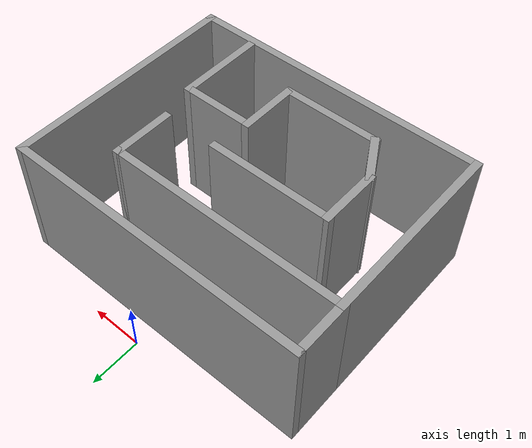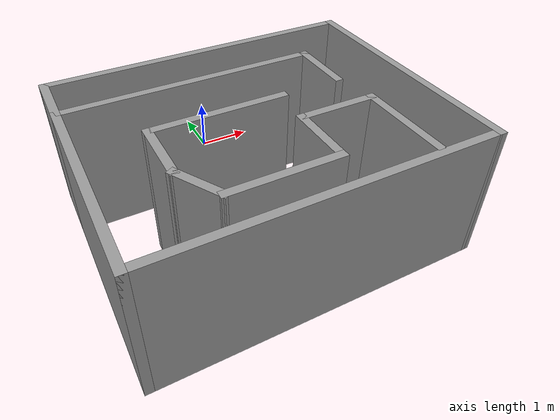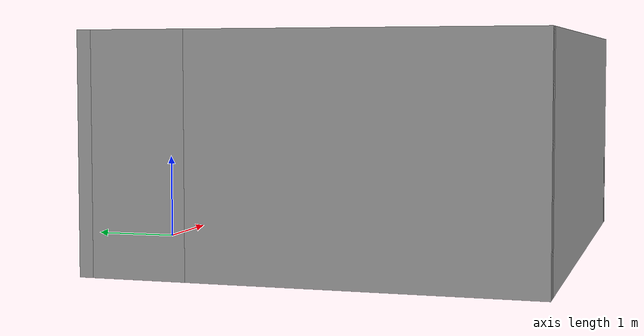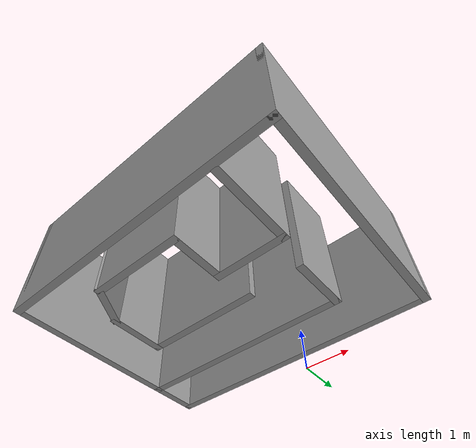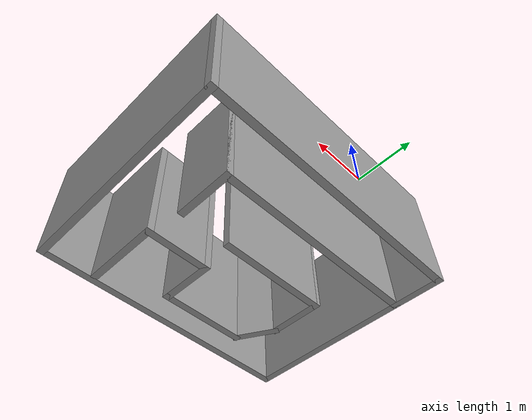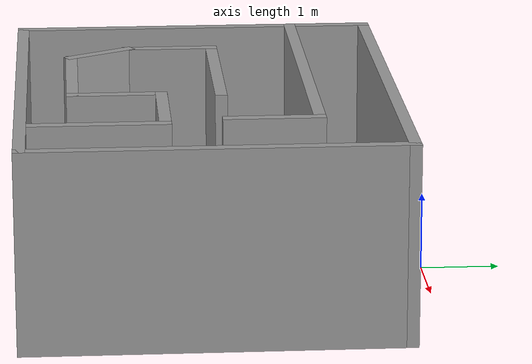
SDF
<?xml version='1.0'?>
<sdf version='1.6'>
  <model name='test'>
    <pose frame=''>-0.085 -2.76 0 0 -0 0</pose>
    <link name='Wall_0'>
      <collision name='Wall_0_Collision'>
        <geometry>
          <box>
            <size>3.75 0.15 2.5</size>
          </box>
        </geometry>
        <pose frame=''>0 0 1.25 0 -0 0</pose>
      </collision>
      <visual name='Wall_0_Visual'>
        <pose frame=''>0 0 1.25 0 -0 0</pose>
        <geometry>
          <box>
            <size>3.75 0.15 2.5</size>
          </box>
        </geometry>
        <material>
          <script>
            <uri>file://media/materials/scripts/gazebo.material</uri>
            <name>Gazebo/Grey</name>
          </script>
          <ambient>1 1 1 1</ambient>
        </material>
      </visual>
      <pose frame=''>-2.925 -0.5 0 0 0 -1.5708</pose>
    </link>
    <link name='Wall_1'>
      <collision name='Wall_1_Collision'>
        <geometry>
          <box>
            <size>6 0.15 2.5</size>
          </box>
        </geometry>
        <pose frame=''>0 0 1.25 0 -0 0</pose>
      </collision>
      <visual name='Wall_1_Visual'>
        <pose frame=''>0 0 1.25 0 -0 0</pose>
        <geometry>
          <box>
            <size>6 0.15 2.5</size>
          </box>
        </geometry>
        <material>
          <script>
            <uri>file://media/materials/scripts/gazebo.material</uri>
            <name>Gazebo/Grey</name>
          </script>
          <ambient>1 1 1 1</ambient>
        </material>
      </visual>
      <pose frame=''>0 -2.3 0 0 -0 0</pose>
    </link>
    <link name='Wall_10'>
      <collision name='Wall_10_Collision'>
        <geometry>
          <box>
            <size>1.25 0.15 2.5</size>
          </box>
        </geometry>
        <pose frame=''>0 0 1.25 0 -0 0</pose>
      </collision>
      <visual name='Wall_10_Visual'>
        <pose frame=''>0 0 1.25 0 -0 0</pose>
        <geometry>
          <box>
            <size>1.25 0.15 2.5</size>
          </box>
        </geometry>
        <material>
          <script>
            <uri>file://media/materials/scripts/gazebo.material</uri>
            <name>Gazebo/Grey</name>
          </script>
          <ambient>1 1 1 1</ambient>
        </material>
      </visual>
      <pose frame=''>-1.785 -0.38 0 0 0 -1.5708</pose>
    </link>
    <link name='Wall_11'>
      <collision name='Wall_11_Collision'>
        <geometry>
          <box>
            <size>1 0.15 2.5</size>
          </box>
        </geometry>
        <pose frame=''>0 0 1.25 0 -0 0</pose>
      </collision>
      <visual name='Wall_11_Visual'>
        <pose frame=''>0 0 1.25 0 -0 0</pose>
        <geometry>
          <box>
            <size>1 0.15 2.5</size>
          </box>
        </geometry>
        <material>
          <script>
            <uri>file://media/materials/scripts/gazebo.material</uri>
            <name>Gazebo/Grey</name>
          </script>
          <ambient>1 1 1 1</ambient>
        </material>
      </visual>
      <pose frame=''>-1.5725 -1.29806 0 0 0 -1.0472</pose>
    </link>
    <link name='Wall_12'>
      <collision name='Wall_12_Collision'>
        <geometry>
          <box>
            <size>2 0.15 2.5</size>
          </box>
        </geometry>
        <pose frame=''>0 0 1.25 0 -0 0</pose>
      </collision>
      <visual name='Wall_12_Visual'>
        <pose frame=''>0 0 1.25 0 -0 0</pose>
        <geometry>
          <box>
            <size>2 0.15 2.5</size>
          </box>
        </geometry>
        <material>
          <script>
            <uri>file://media/materials/scripts/gazebo.material</uri>
            <name>Gazebo/Grey</name>
          </script>
          <ambient>1 1 1 1</ambient>
        </material>
      </visual>
      <pose frame=''>-0.435 -1.66612 0 0 -0 0</pose>
    </link>
    <link name='Wall_13'>
      <collision name='Wall_13_Collision'>
        <geometry>
          <box>
            <size>1.25 0.15 2.5</size>
          </box>
        </geometry>
        <pose frame=''>0 0 1.25 0 -0 0</pose>
      </collision>
      <visual name='Wall_13_Visual'>
        <pose frame=''>0 0 1.25 0 -0 0</pose>
        <geometry>
          <box>
            <size>1.25 0.15 2.5</size>
          </box>
        </geometry>
        <material>
          <script>
            <uri>file://media/materials/scripts/gazebo.material</uri>
            <name>Gazebo/Grey</name>
          </script>
          <ambient>1 1 1 1</ambient>
        </material>
      </visual>
      <pose frame=''>0.49 -1.11612 0 0 -0 1.5708</pose>
    </link>
    <link name='Wall_14'>
      <collision name='Wall_14_Collision'>
        <geometry>
          <box>
            <size>1.5 0.15 2.5</size>
          </box>
        </geometry>
        <pose frame=''>0 0 1.25 0 -0 0</pose>
      </collision>
      <visual name='Wall_14_Visual'>
        <pose frame=''>0 0 1.25 0 -0 0</pose>
        <geometry>
          <box>
            <size>1.5 0.15 2.5</size>
          </box>
        </geometry>
        <material>
          <script>
            <uri>file://media/materials/scripts/gazebo.material</uri>
            <name>Gazebo/Grey</name>
          </script>
          <ambient>1 1 1 1</ambient>
        </material>
      </visual>
      <pose frame=''>1.165 -0.566122 0 0 -0 0</pose>
    </link>
    <link name='Wall_15'>
      <collision name='Wall_15_Collision'>
        <geometry>
          <box>
            <size>1.75 0.15 2.5</size>
          </box>
        </geometry>
        <pose frame=''>0 0 1.25 0 -0 0</pose>
      </collision>
      <visual name='Wall_15_Visual'>
        <pose frame=''>0 0 1.25 0 -0 0</pose>
        <geometry>
          <box>
            <size>1.75 0.15 2.5</size>
          </box>
        </geometry>
        <material>
          <script>
            <uri>file://media/materials/scripts/gazebo.material</uri>
            <name>Gazebo/Grey</name>
          </script>
          <ambient>1 1 1 1</ambient>
        </material>
      </visual>
      <pose frame=''>1.84 -1.36612 0 0 0 -1.5708</pose>
    </link>
    <link name='Wall_2'>
      <collision name='Wall_2_Collision'>
        <geometry>
          <box>
            <size>4.75 0.15 2.5</size>
          </box>
        </geometry>
        <pose frame=''>0 0 1.25 0 -0 0</pose>
      </collision>
      <visual name='Wall_2_Visual'>
        <pose frame=''>0 0 1.25 0 -0 0</pose>
        <geometry>
          <box>
            <size>4.75 0.15 2.5</size>
          </box>
        </geometry>
        <material>
          <script>
            <uri>file://media/materials/scripts/gazebo.material</uri>
            <name>Gazebo/Grey</name>
          </script>
          <ambient>1 1 1 1</ambient>
        </material>
      </visual>
      <pose frame=''>2.925 0 0 0 -0 1.5708</pose>
    </link>
    <link name='Wall_3'>
      <collision name='Wall_3_Collision'>
        <geometry>
          <box>
            <size>6 0.15 2.5</size>
          </box>
        </geometry>
        <pose frame=''>0 0 1.25 0 -0 0</pose>
      </collision>
      <visual name='Wall_3_Visual'>
        <pose frame=''>0 0 1.25 0 -0 0</pose>
        <geometry>
          <box>
            <size>6 0.15 2.5</size>
          </box>
        </geometry>
        <material>
          <script>
            <uri>file://media/materials/scripts/gazebo.material</uri>
            <name>Gazebo/Grey</name>
          </script>
          <ambient>1 1 1 1</ambient>
        </material>
      </visual>
      <pose frame=''>0 2.3 0 0 -0 3.14159</pose>
    </link>
    <link name='Wall_4'>
      <collision name='Wall_4_Collision'>
        <geometry>
          <box>
            <size>1.15 0.15 2.5</size>
          </box>
        </geometry>
        <pose frame=''>0 0 1.25 0 -0 0</pose>
      </collision>
      <visual name='Wall_4_Visual'>
        <pose frame=''>0 0 1.25 0 -0 0</pose>
        <geometry>
          <box>
            <size>1.15 0.15 2.5</size>
          </box>
        </geometry>
        <material>
          <script>
            <uri>file://media/materials/scripts/gazebo.material</uri>
            <name>Gazebo/Grey</name>
          </script>
          <ambient>1 1 1 1</ambient>
        </material>
      </visual>
      <pose frame=''>-2.925 1.8 0 0 0 -1.5708</pose>
    </link>
    <link name='Wall_5'>
      <collision name='Wall_5_Collision'>
        <geometry>
          <box>
            <size>4.75 0.15 2.5</size>
          </box>
        </geometry>
        <pose frame=''>0 0 1.25 0 -0 0</pose>
      </collision>
      <visual name='Wall_5_Visual'>
        <pose frame=''>0 0 1.25 0 -0 0</pose>
        <geometry>
          <box>
            <size>4.75 0.15 2.5</size>
          </box>
        </geometry>
        <material>
          <script>
            <uri>file://media/materials/scripts/gazebo.material</uri>
            <name>Gazebo/Grey</name>
          </script>
          <ambient>1 1 1 1</ambient>
        </material>
      </visual>
      <pose frame=''>-0.625 1.3 0 0 -0 0</pose>
    </link>
    <link name='Wall_6'>
      <collision name='Wall_6_Collision'>
        <geometry>
          <box>
            <size>1.25 0.15 2.5</size>
          </box>
        </geometry>
        <pose frame=''>0 0 1.25 0 -0 0</pose>
      </collision>
      <visual name='Wall_6_Visual'>
        <pose frame=''>0 0 1.25 0 -0 0</pose>
        <geometry>
          <box>
            <size>1.25 0.15 2.5</size>
          </box>
        </geometry>
        <material>
          <script>
            <uri>file://media/materials/scripts/gazebo.material</uri>
            <name>Gazebo/Grey</name>
          </script>
          <ambient>1 1 1 1</ambient>
        </material>
      </visual>
      <pose frame=''>1.675 0.75 0 0 0 -1.5708</pose>
    </link>
    <link name='Wall_8'>
      <collision name='Wall_8_Collision'>
        <geometry>
          <box>
            <size>2.5 0.15 2.5</size>
          </box>
        </geometry>
        <pose frame=''>0 0 1.25 0 -0 0</pose>
      </collision>
      <visual name='Wall_8_Visual'>
        <pose frame=''>0 0 1.25 0 -0 0</pose>
        <geometry>
          <box>
            <size>2.5 0.15 2.5</size>
          </box>
        </geometry>
        <material>
          <script>
            <uri>file://media/materials/scripts/gazebo.material</uri>
            <name>Gazebo/Grey</name>
          </script>
          <ambient>1 1 1 1</ambient>
        </material>
      </visual>
      <pose frame=''>-0.61 0.17 0 0 -0 0</pose>
    </link>
    <static>1</static>
  </model>
</sdf>
